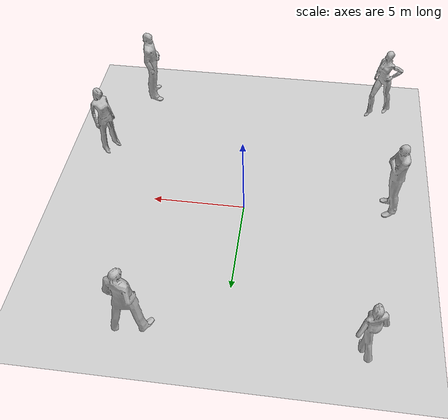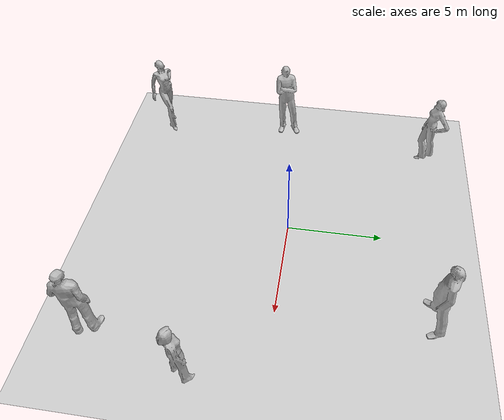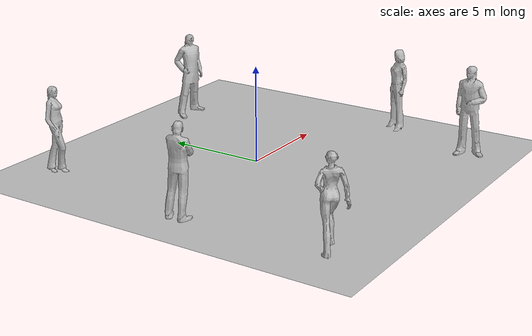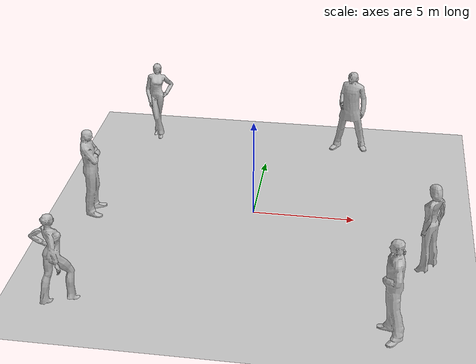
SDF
<?xml version="1.0"?>
<sdf version="1.4">
  <world name="default">
    <include>
      <uri>model://ground_plane</uri>
    </include>
    <include>
      <uri>model://sun</uri>
    </include>
    <model name="my_mesh1">
      <pose>-7.37 7 0  0 0 0</pose>
      <static>true</static>
      <link name="body1">
        <visual name="visual1">
          <geometry>
            <mesh><uri>file:///home/jack/catkin_ws/src/mosaic_worlds/Models/model_1.dae</uri></mesh>
          </geometry>
        </visual>
      </link>
    </model>
    <model name="my_mesh2">
      <pose>-3.549 -2.625 0  0 0 1.800457</pose>
      <static>true</static>
      <link name="body2">
        <visual name="visual2">
          <geometry>
            <mesh><uri>file:///home/jack/catkin_ws/src/mosaic_worlds/Models/model_2.dae</uri></mesh>
          </geometry>
        </visual>
      </link>
    </model>
    <model name="my_mesh3">
      <pose>-6.3194 -15.25 0  0 0 0.987179</pose>
      <static>true</static>
      <link name="body3">
        <visual name="visual3">
          <geometry>
            <mesh><uri>file:///home/jack/catkin_ws/src/mosaic_worlds/Models/model_3.dae</uri></mesh>
          </geometry>
        </visual>
      </link>
    </model>
    <model name="my_mesh4">
      <pose>1.56 -3.078 0  0 0 -1.379909</pose>
      <static>true</static>
      <link name="body4">
        <visual name="visual4">
          <geometry>
            <mesh><uri>file:///home/jack/catkin_ws/src/mosaic_worlds/Models/model_4.dae</uri></mesh>
          </geometry>
        </visual>
      </link>
    </model>
    <model name="my_mesh5">
      <pose>10.8285 3.404 0  0 0 -2.185645</pose>
      <static>true</static>
      <link name="body5">
        <visual name="visual5">
          <geometry>
            <mesh><uri>file:///home/jack/catkin_ws/src/mosaic_worlds/Models/model_5.dae</uri></mesh>
          </geometry>
        </visual>
      </link>
    </model>
    <model name="my_mesh6">
      <pose>-4.808266 5.299823 0  0 0 0</pose>
      <static>true</static>
      <link name="body6">
        <visual name="visual6">
          <geometry>
            <mesh><uri>file:///home/jack/catkin_ws/src/mosaic_worlds/Models/model_6.dae</uri></mesh>
          </geometry>
        </visual>
      </link>
    </model>
  </world>
</sdf>
